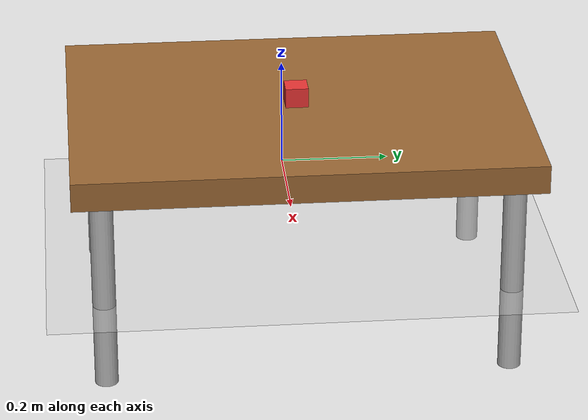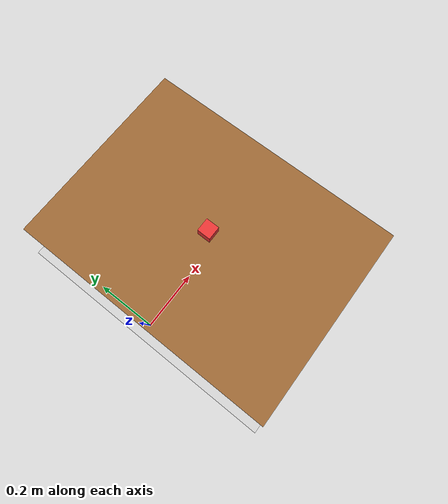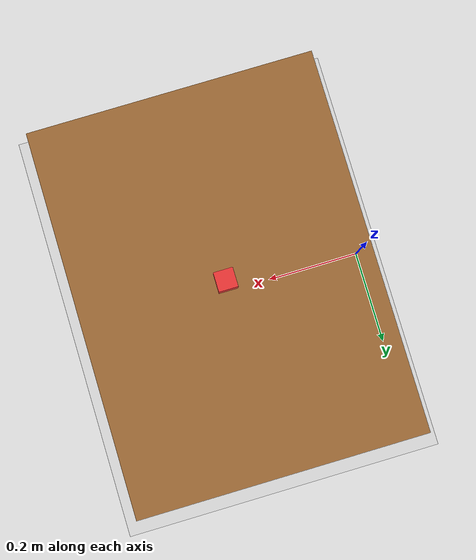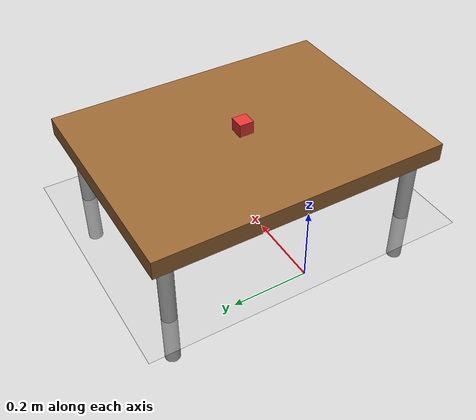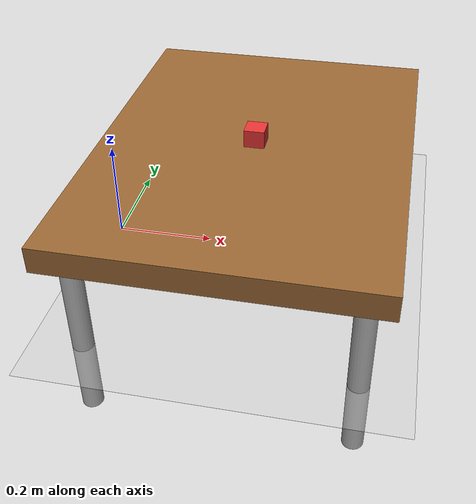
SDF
<?xml version="1.0" ?>
<sdf version="1.6">
  <world name="pick_and_place_world">

    <!-- ================= GAZEBO ROS STATE PLUGIN ================= -->
    <plugin name="gazebo_ros_state" filename="libgazebo_ros_state.so">
      <ros>
        <namespace>/</namespace>
      </ros>
      <update_rate>50.0</update_rate>
    </plugin>

    <!-- ================= PHYSICS ================= -->
    <physics type="ode">
      <max_step_size>0.001</max_step_size>
      <real_time_factor>1.0</real_time_factor>
      <real_time_update_rate>1000</real_time_update_rate>

      <ode>
        <solver>
          <type>quick</type>
          <iters>200</iters>
          <sor>1.3</sor>
        </solver>

        <constraints>
          <cfm>0.0</cfm>
          <erp>0.2</erp>
          <contact_max_correcting_vel>0.05</contact_max_correcting_vel>
          <contact_surface_layer>0.001</contact_surface_layer>
        </constraints>
      </ode>
    </physics>

    <gravity>0 0 -9.8</gravity>

    <!-- ================= LIGHT ================= -->
    <include>
      <uri>model://sun</uri>
    </include>

    <!-- ================= GROUND ================= -->
    <include>
      <uri>model://ground_plane</uri>
    </include>

    <!-- ================= TABLE ================= -->
    <model name="table">
      <static>true</static>
      <pose>0.30 0 0.225 0 0 0</pose>

      <link name="table_top">

        <visual name="top_visual">
          <geometry>
            <box><size>0.6 0.8 0.05</size></box>
          </geometry>
          <material>
            <ambient>0.6 0.4 0.2 1</ambient>
            <diffuse>0.6 0.4 0.2 1</diffuse>
          </material>
        </visual>

        <collision name="top_collision">
          <geometry>
            <box><size>0.6 0.8 0.05</size></box>
          </geometry>

          <surface>
            <friction>
              <ode>
                <mu>1.0</mu>
                <mu2>1.0</mu2>
              </ode>
            </friction>

            <contact>
              <ode>
                <kp>1000000.0</kp>
                <kd>1000.0</kd>
                <soft_cfm>0.0</soft_cfm>
                <soft_erp>0.2</soft_erp>
              </ode>
            </contact>

            <bounce>
              <restitution_coefficient>0.0</restitution_coefficient>
              <threshold>1.0</threshold>
            </bounce>

          </surface>
        </collision>

        <inertial>
          <mass>10.0</mass>
          <inertia>
            <ixx>0.44</ixx><ixy>0</ixy><ixz>0</ixz>
            <iyy>0.33</iyy><iyz>0</iyz>
            <izz>0.71</izz>
          </inertia>
        </inertial>
      </link>

      <!-- ================= LEGS ================= -->

      <link name="leg1">
        <pose>-0.25 -0.35 -0.2 0 0 0</pose>
        <visual name="leg1_visual">
          <geometry>
            <cylinder><radius>0.02</radius><length>0.35</length></cylinder>
          </geometry>
        </visual>
        <collision name="leg1_collision">
          <geometry>
            <cylinder><radius>0.02</radius><length>0.35</length></cylinder>
          </geometry>
        </collision>
      </link>
      <joint name="leg1_joint" type="fixed">
        <parent>table_top</parent>
        <child>leg1</child>
      </joint>

      <link name="leg2">
        <pose>0.25 -0.35 -0.2 0 0 0</pose>
        <visual name="leg2_visual">
          <geometry>
            <cylinder><radius>0.02</radius><length>0.35</length></cylinder>
          </geometry>
        </visual>
        <collision name="leg2_collision">
          <geometry>
            <cylinder><radius>0.02</radius><length>0.35</length></cylinder>
          </geometry>
        </collision>
      </link>
      <joint name="leg2_joint" type="fixed">
        <parent>table_top</parent>
        <child>leg2</child>
      </joint>

      <link name="leg3">
        <pose>-0.25 0.35 -0.2 0 0 0</pose>
        <visual name="leg3_visual">
          <geometry>
            <cylinder><radius>0.02</radius><length>0.35</length></cylinder>
          </geometry>
        </visual>
        <collision name="leg3_collision">
          <geometry>
            <cylinder><radius>0.02</radius><length>0.35</length></cylinder>
          </geometry>
        </collision>
      </link>
      <joint name="leg3_joint" type="fixed">
        <parent>table_top</parent>
        <child>leg3</child>
      </joint>

      <link name="leg4">
        <pose>0.25 0.35 -0.2 0 0 0</pose>
        <visual name="leg4_visual">
          <geometry>
            <cylinder><radius>0.02</radius><length>0.35</length></cylinder>
          </geometry>
        </visual>
        <collision name="leg4_collision">
          <geometry>
            <cylinder><radius>0.02</radius><length>0.35</length></cylinder>
          </geometry>
        </collision>
      </link>
      <joint name="leg4_joint" type="fixed">
        <parent>table_top</parent>
        <child>leg4</child>
      </joint>

    </model>

    <!-- ================= CUBE ================= -->
    <model name="cube">
      <pose>0.30 0 0.265 0 0 0</pose>

      <link name="cube_link">

        <visual name="cube_visual">
          <geometry>
            <box><size>0.04 0.04 0.04</size></box>
          </geometry>
          <material>
            <ambient>0.9 0.2 0.2 1</ambient>
            <diffuse>0.9 0.2 0.2 1</diffuse>
          </material>
        </visual>

        <collision name="cube_collision">
          <geometry>
            <box><size>0.04 0.04 0.04</size></box>
          </geometry>

          <surface>
            <friction>
              <ode>
                <mu>1.2</mu>
                <mu2>1.2</mu2>
              </ode>
            </friction>

            <contact>
              <ode>
                <kp>800000.0</kp>
                <kd>800.0</kd>
                <soft_cfm>0.0</soft_cfm>
                <soft_erp>0.2</soft_erp>
              </ode>
            </contact>

            <bounce>
              <restitution_coefficient>0.0</restitution_coefficient>
              <threshold>1.0</threshold>
            </bounce>

          </surface>
        </collision>

        <inertial>
          <mass>0.1</mass>
          <inertia>
            <ixx>2.667e-5</ixx>
            <iyy>2.667e-5</iyy>
            <izz>2.667e-5</izz>
            <ixy>0</ixy><ixz>0</ixz><iyz>0</iyz>
          </inertia>
        </inertial>

      </link>
    </model>

    <!-- ================= CAMERA ================= -->
    <gui fullscreen="0">
      <camera name="user_camera">
        <pose>1.2 -0.8 1.0 0 0.5 2.3</pose>
      </camera>
    </gui>

  </world>
</sdf>
